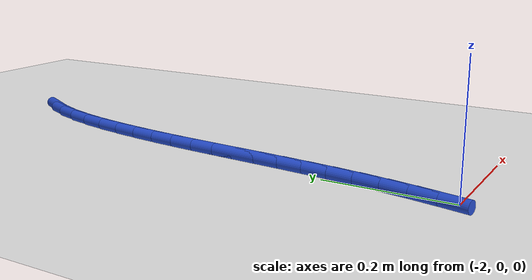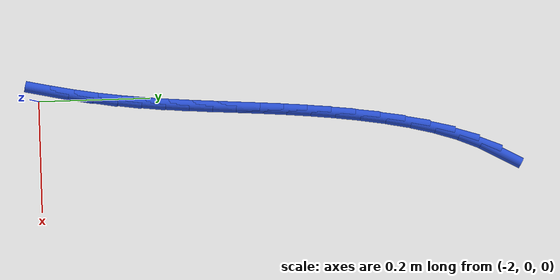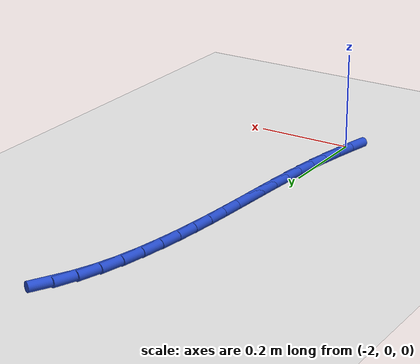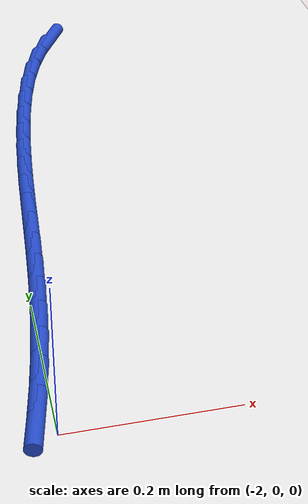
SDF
<sdf version="1.6">
 <world name="default">
  <model name="ground_plane">
   <static>1</static>
   <link name="link">
    <collision name="collision">
     <geometry><plane><normal>0 0 1</normal><size>100 100</size></plane></geometry>
     <surface><friction><ode><mu>100</mu><mu2>50</mu2></ode></friction></surface>
    </collision>
    <visual name="visual">
     <cast_shadows>0</cast_shadows>
     <geometry><plane><normal>0 0 1</normal><size>100 100</size></plane></geometry>
     <material>
      <script><uri>file://media/materials/scripts/gazebo.material</uri><name>Gazebo/WhiteGlow</name></script>
     </material>
    </visual>
   </link>
  </model>
  <model name="line">
   <link name="link_60">
    <pose>-1.8812467838868188 0.8300364277303285 0.01 0 1.57 1.0742404394073841</pose>
    <collision name="collision">
     <geometry><cylinder><radius>0.01</radius><length>0.08</length></cylinder></geometry>
    </collision>
    <visual name="visual">
     <material>
      <script><name>Gazebo/Blue</name><uri>file://media/materials/scripts/gazebo.material</uri></script>
     </material>
     <geometry><cylinder><radius>0.01</radius><length>0.08</length></cylinder></geometry>
    </visual>
   </link>
   <link name="link_61">
    <pose>-1.901617623968946 0.7924406755170287 0.01 0 1.57 1.1824357154309286</pose>
    <collision name="collision">
     <geometry><cylinder><radius>0.01</radius><length>0.08</length></cylinder></geometry>
    </collision>
    <visual name="visual">
     <material>
      <script><name>Gazebo/Blue</name><uri>file://media/materials/scripts/gazebo.material</uri></script>
     </material>
     <geometry><cylinder><radius>0.01</radius><length>0.08</length></cylinder></geometry>
    </visual>
   </link>
   <link name="link_62">
    <pose>-1.9183264173494723 0.7516018404738722 0.01 0 1.57 1.2668627036573386</pose>
    <collision name="collision">
     <geometry><cylinder><radius>0.01</radius><length>0.08</length></cylinder></geometry>
    </collision>
    <visual name="visual">
     <material>
      <script><name>Gazebo/Blue</name><uri>file://media/materials/scripts/gazebo.material</uri></script>
     </material>
     <geometry><cylinder><radius>0.01</radius><length>0.08</length></cylinder></geometry>
    </visual>
   </link>
   <link name="link_63">
    <pose>-1.9318709116377106 0.7084185873184566 0.01 0 1.57 1.3317165968595035</pose>
    <collision name="collision">
     <geometry><cylinder><radius>0.01</radius><length>0.08</length></cylinder></geometry>
    </collision>
    <visual name="visual">
     <material>
      <script><name>Gazebo/Blue</name><uri>file://media/materials/scripts/gazebo.material</uri></script>
     </material>
     <geometry><cylinder><radius>0.01</radius><length>0.08</length></cylinder></geometry>
    </visual>
   </link>
   <link name="link_64">
    <pose>-1.9427488544429725 0.6637895807683813 0.01 0 1.57 1.3803506667457155</pose>
    <collision name="collision">
     <geometry><cylinder><radius>0.01</radius><length>0.08</length></cylinder></geometry>
    </collision>
    <visual name="visual">
     <material>
      <script><name>Gazebo/Blue</name><uri>file://media/materials/scripts/gazebo.material</uri></script>
     </material>
     <geometry><cylinder><radius>0.01</radius><length>0.08</length></cylinder></geometry>
    </visual>
   </link>
   <link name="link_65">
    <pose>-1.9514579933745724 0.6186134855412443 0.01 0 1.57 1.4152566017948995</pose>
    <collision name="collision">
     <geometry><cylinder><radius>0.01</radius><length>0.08</length></cylinder></geometry>
    </collision>
    <visual name="visual">
     <material>
      <script><name>Gazebo/Blue</name><uri>file://media/materials/scripts/gazebo.material</uri></script>
     </material>
     <geometry><cylinder><radius>0.01</radius><length>0.08</length></cylinder></geometry>
    </visual>
   </link>
   <link name="link_66">
    <pose>-1.9584903436504462 0.5737661109770493 0.01 0 1.57 1.4418287530583103</pose>
    <collision name="collision">
     <geometry><cylinder><radius>0.01</radius><length>0.08</length></cylinder></geometry>
    </collision>
    <visual name="visual">
     <material>
      <script><name>Gazebo/Blue</name><uri>file://media/materials/scripts/gazebo.material</uri></script>
     </material>
     <geometry><cylinder><radius>0.01</radius><length>0.08</length></cylinder></geometry>
    </visual>
   </link>
   <link name="link_67">
    <pose>-1.9642142279488908 0.5296300970708596 0.01 0 1.57 1.4640198442393648</pose>
    <collision name="collision">
     <geometry><cylinder><radius>0.01</radius><length>0.08</length></cylinder></geometry>
    </collision>
    <visual name="visual">
     <material>
      <script><name>Gazebo/Blue</name><uri>file://media/materials/scripts/gazebo.material</uri></script>
     </material>
     <geometry><cylinder><radius>0.01</radius><length>0.08</length></cylinder></geometry>
    </visual>
   </link>
   <link name="link_68">
    <pose>-1.9688786428658611 0.48611232379185343 0.01 0 1.57 1.4815455242399365</pose>
    <collision name="collision">
     <geometry><cylinder><radius>0.01</radius><length>0.08</length></cylinder></geometry>
    </collision>
    <visual name="visual">
     <material>
      <script><name>Gazebo/Blue</name><uri>file://media/materials/scripts/gazebo.material</uri></script>
     </material>
     <geometry><cylinder><radius>0.01</radius><length>0.08</length></cylinder></geometry>
    </visual>
   </link>
   <link name="link_69">
    <pose>-1.9727277262510086 0.44310029900528597 0.01 0 1.57 1.4940355642649603</pose>
    <collision name="collision">
     <geometry><cylinder><radius>0.01</radius><length>0.08</length></cylinder></geometry>
    </collision>
    <visual name="visual">
     <material>
      <script><name>Gazebo/Blue</name><uri>file://media/materials/scripts/gazebo.material</uri></script>
     </material>
     <geometry><cylinder><radius>0.01</radius><length>0.08</length></cylinder></geometry>
    </visual>
   </link>
   <link name="link_70">
    <pose>-1.9760056159539834 0.40048153057641045 0.01 0 1.57 1.501211807248619</pose>
    <collision name="collision">
     <geometry><cylinder><radius>0.01</radius><length>0.08</length></cylinder></geometry>
    </collision>
    <visual name="visual">
     <material>
      <script><name>Gazebo/Blue</name><uri>file://media/materials/scripts/gazebo.material</uri></script>
     </material>
     <geometry><cylinder><radius>0.01</radius><length>0.08</length></cylinder></geometry>
    </visual>
   </link>
   <link name="link_71">
    <pose>-1.9789564498244356 0.35814352637048047 0.01 0 1.57 1.5028920170929683</pose>
    <collision name="collision">
     <geometry><cylinder><radius>0.01</radius><length>0.08</length></cylinder></geometry>
    </collision>
    <visual name="visual">
     <material>
      <script><name>Gazebo/Blue</name><uri>file://media/materials/scripts/gazebo.material</uri></script>
     </material>
     <geometry><cylinder><radius>0.01</radius><length>0.08</length></cylinder></geometry>
    </visual>
   </link>
   <link name="link_72">
    <pose>-1.9818243657120163 0.31597379425275085 0.01 0 1.57 1.4989928508094597</pose>
    <collision name="collision">
     <geometry><cylinder><radius>0.01</radius><length>0.08</length></cylinder></geometry>
    </collision>
    <visual name="visual">
     <material>
      <script><name>Gazebo/Blue</name><uri>file://media/materials/scripts/gazebo.material</uri></script>
     </material>
     <geometry><cylinder><radius>0.01</radius><length>0.08</length></cylinder></geometry>
    </visual>
   </link>
   <link name="link_73">
    <pose>-1.9848535014663753 0.27385984208847464 0.01 0 1.57 1.4895329643839106</pose>
    <collision name="collision">
     <geometry><cylinder><radius>0.01</radius><length>0.08</length></cylinder></geometry>
    </collision>
    <visual name="visual">
     <material>
      <script><name>Gazebo/Blue</name><uri>file://media/materials/scripts/gazebo.material</uri></script>
     </material>
     <geometry><cylinder><radius>0.01</radius><length>0.08</length></cylinder></geometry>
    </visual>
   </link>
   <link name="link_74">
    <pose>-1.9882879949371643 0.23168917774290657 0.01 0 1.57 1.474636523252333</pose>
    <collision name="collision">
     <geometry><cylinder><radius>0.01</radius><length>0.08</length></cylinder></geometry>
    </collision>
    <visual name="visual">
     <material>
      <script><name>Gazebo/Blue</name><uri>file://media/materials/scripts/gazebo.material</uri></script>
     </material>
     <geometry><cylinder><radius>0.01</radius><length>0.08</length></cylinder></geometry>
    </visual>
   </link>
   <link name="link_75">
    <pose>-1.9923719839740315 0.1893493090813 0.01 0 1.57 1.454536499628216</pose>
    <collision name="collision">
     <geometry><cylinder><radius>0.01</radius><length>0.08</length></cylinder></geometry>
    </collision>
    <visual name="visual">
     <material>
      <script><name>Gazebo/Blue</name><uri>file://media/materials/scripts/gazebo.material</uri></script>
     </material>
     <geometry><cylinder><radius>0.01</radius><length>0.08</length></cylinder></geometry>
    </visual>
   </link>
   <link name="link_76">
    <pose>-1.9973496064266298 0.14672774396890864 0.01 0 1.57 1.4295762912710814</pose>
    <collision name="collision">
     <geometry><cylinder><radius>0.01</radius><length>0.08</length></cylinder></geometry>
    </collision>
    <visual name="visual">
     <material>
      <script><name>Gazebo/Blue</name><uri>file://media/materials/scripts/gazebo.material</uri></script>
     </material>
     <geometry><cylinder><radius>0.01</radius><length>0.08</length></cylinder></geometry>
    </visual>
   </link>
   <link name="link_77">
    <pose>-2.003465000144608 0.10371199027098711 0.01 0 1.57 1.4005641741584973</pose>
    <collision name="collision">
     <geometry><cylinder><radius>0.01</radius><length>0.08</length></cylinder></geometry>
    </collision>
    <visual name="visual">
     <material>
      <script><name>Gazebo/Blue</name><uri>file://media/materials/scripts/gazebo.material</uri></script>
     </material>
     <geometry><cylinder><radius>0.01</radius><length>0.08</length></cylinder></geometry>
    </visual>
   </link>
   <link name="link_78">
    <pose>-2.010945220504991 0.06019598072199666 0.01 0 1.57 1.3745747473614855</pose>
    <collision name="collision">
     <geometry><cylinder><radius>0.01</radius><length>0.08</length></cylinder></geometry>
    </collision>
    <visual name="visual">
     <material>
      <script><name>Gazebo/Blue</name><uri>file://media/materials/scripts/gazebo.material</uri></script>
     </material>
     <geometry><cylinder><radius>0.01</radius><length>0.08</length></cylinder></geometry>
    </visual>
   </link>
   <link name="link_79">
    <pose>-2.019691467105557 0.016196205300199294 0.01 0 1.57 1.3572055548109996</pose>
    <collision name="collision">
     <geometry><cylinder><radius>0.01</radius><length>0.08</length></cylinder></geometry>
    </collision>
    <visual name="visual">
     <material>
      <script><name>Gazebo/Blue</name><uri>file://media/materials/scripts/gazebo.material</uri></script>
     </material>
     <geometry><cylinder><radius>0.01</radius><length>0.08</length></cylinder></geometry>
    </visual>
   </link>
  </model>
 </world>
</sdf>
